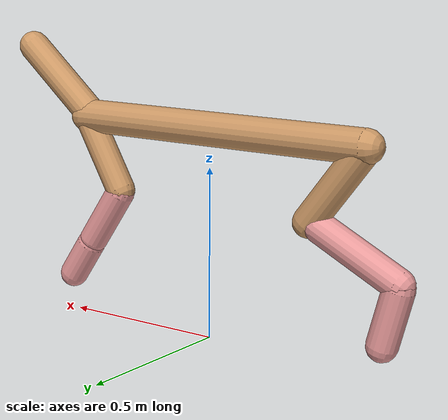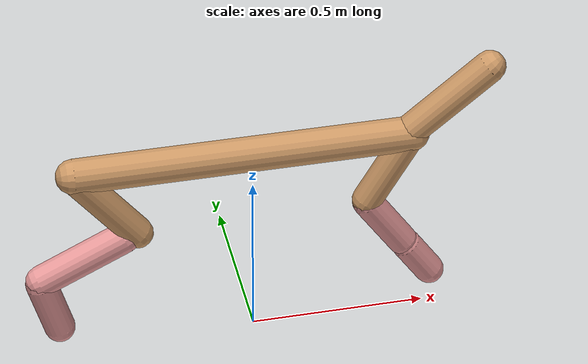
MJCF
<mujoco model="cheetah">
  <compiler angle="radian" coordinate="local" inertiafromgeom="true" settotalmass="14" />
  <default>
    <joint armature=".1" damping=".01" limited="true" solimplimit="0 .8 .03" solreflimit=".02 1" stiffness="8" />
    <geom conaffinity="0" condim="3" contype="1" friction="0.8 .1 .1" rgba="0.8 0.6 .4 1" solimp="0.0 0.8 0.01" solref="0.02 1" />
    <motor ctrllimited="true" ctrlrange="-1 1" />
  </default>
  <size nstack="300000" nuser_geom="1" />
  <option gravity="0 0 -9.81" timestep="0.01" />
  <worldbody>
    <body name="torso" pos="0.0 0.0 0.6101388335867844">
      <joint armature="0" axis="1 0 0" damping="0" limited="false" name="ignorex" pos="0 0 0" stiffness="0" type="slide" />
      <joint armature="0" axis="0 0 1" damping="0" limited="false" name="ignorez" pos="0 0 0" stiffness="0" type="slide" />
      <joint armature="0" axis="0 1 0" damping="0" limited="false" name="ignorey" pos="0 0 0" stiffness="0" type="hinge" />
      <geom fromto="-0.5 0.0 0.0 0.4516808688334994 0.0 0.0" name="torso" size="0.04943155455245478" type="capsule" />
      <geom axisangle="0 1 0 .87" name="head" pos="0.5516808688334994 0.0 0.1" size="0.045160606411674666 0.15" type="capsule" />

      <body name="bthigh" pos="-.5 0 0">
        <joint axis="0 1 0" damping="6" name="bthigh" pos="0 0 0" range="-.52 1.05" stiffness="240" type="hinge" />
        <geom axisangle="0 1 0 -3.8" name="bthigh" pos="0.091688206551672 0.0 -0.11919466851717359" size="0.044509438448388026 0.13136764514907903" type="capsule" />
        <body name="bshin" pos="0.14337641310334398 0.0 -0.22838933703434716">
          <joint axis="0 1 0" damping="4.5" name="bshin" pos="0 0 0" range="-.785 .785" stiffness="180" type="hinge" />
          <geom axisangle="0 1 0 -2.03" name="bshin" pos="-0.12738639773514832 0.0 -0.06369319886757416" rgba="0.9 0.6 0.6 1" size="0.044509438448388026 0.13589756394732314" type="capsule" />
          <body name="bfoot" pos="-0.25477279547029663 0.0 -0.12738639773514832">
            <joint axis="0 1 0" damping="3" name="bfoot" pos="0 0 0" range="-.4 .785" stiffness="120" type="hinge" />
            <geom axisangle="0 1 0 -.27" name="bfoot" pos="0.027388778466246686 0.0 -0.08855705037419762" rgba="0.9 0.6 0.6 1" size="0.044509438448388026 0.08516247340698917" type="capsule" />
            <inertial mass="10" />
          </body>
        </body>
      </body>
      <body name="fthigh" pos="0.45168086883349945 0.0 0.0">
        <joint axis="0 1 0" damping="4.5" name="fthigh" pos="0 0 0" range="-1.5 0.8" stiffness="180" type="hinge" />
        <geom axisangle="0 1 0 .52" name="fthigh" pos="-0.06370080307109778 0.0 -0.10920137669331047" size="0.042839177625142534 0.12049839421238738" type="capsule" />
        <body name="fshin" pos="-0.12740160614219556 0.0 -0.21840275338662093">
          <joint axis="0 1 0" damping="3" name="fshin" pos="0 0 0" range="-1.2 1.1" stiffness="120" type="hinge" />
          <geom axisangle="0 1 0 -.6" name="fshin" pos="0.059166356073439744 0.0 -0.08192264687091656" rgba="0.9 0.6 0.6 1" size="0.042839177625142534 0.09603631418430873" type="capsule" />
          <body name="ffoot" pos="0.11833271214687949 0.0 -0.16384529374183313">
            <joint axis="0 1 0" damping="1.5" name="ffoot" pos="0 0 0" range="-3.1 -0.3" stiffness="60" type="hinge" />
            <geom axisangle="0 1 0 -.6" name="ffoot" pos="0.041441927245652474 0.0 -0.06446522015990386" rgba="0.9 0.6 0.6 1" size="0.042839177625142534 0.06342020748020388" type="capsule" />
            <inertial mass="10" />
          </body>
        </body>
      </body>
    </body>
  </worldbody>
  <actuator>
    <motor gear="120" joint="bthigh" name="bthigh" />
    <motor gear="90" joint="bshin" name="bshin" />
    <motor gear="60" joint="bfoot" name="bfoot" />
    <motor gear="120" joint="fthigh" name="fthigh" />
    <motor gear="60" joint="fshin" name="fshin" />
    <motor gear="30" joint="ffoot" name="ffoot" />
  </actuator>
</mujoco>
